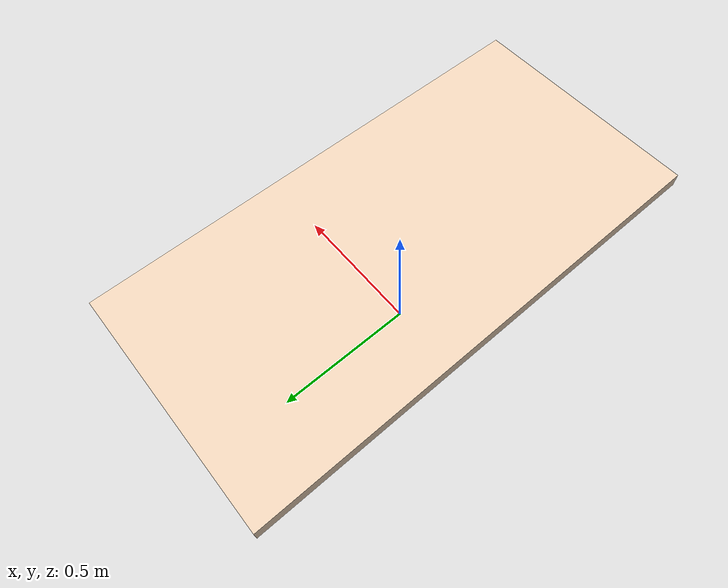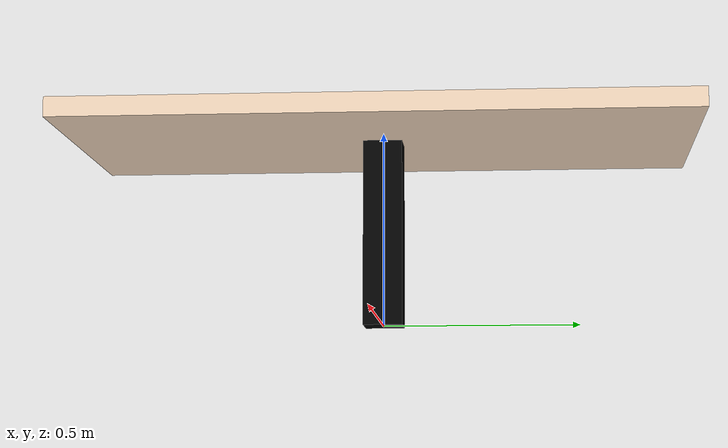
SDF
<?xml version="1.0"?>
<sdf version="1.7">
  <model name="actuated_table">
    <link name="table_top_link">
      <inertial>
        <mass>100000.0</mass>
      </inertial>
      <visual name="table_top_visual">
        <pose>0 0 0.5 0 0 0</pose>
        <geometry>
          <box>
            <size>0.8 1.6 0.05</size>
          </box>
        </geometry>
        <material>
          <diffuse>0.9 0.8 0.7 1.0</diffuse>
        </material>
      </visual>
      <collision name="table_top_collision">
        <pose>0 0 0.5 0 0 0</pose>
        <geometry>
          <box>
            <size>0.8 1.6 0.05</size>
          </box>
        </geometry>
        <drake:proximity_properties>
          <drake:compliant_hydroelastic/>
          <drake:hydroelastic_modulus>1e8</drake:hydroelastic_modulus>
          <drake:mesh_resolution_hint>1.0</drake:mesh_resolution_hint>
          <drake:mu_dynamic>0.3</drake:mu_dynamic>
          <drake:mu_static>0.3</drake:mu_static>
          <drake:hunt_crossley_dissipation>3.0</drake:hunt_crossley_dissipation>
        </drake:proximity_properties>
      </collision>
    </link>

    <link name="table_base_link">
      <inertial>
        <mass>100000.0</mass>
      </inertial>
      <visual name="table_base_visual">
        <pose>0 0 0.25 0 0 0</pose>
        <geometry>
          <box>
            <size>0.1 0.1 0.5</size>
          </box>
        </geometry>
        <material>
          <diffuse>0.0 0.0 0.0 0.0</diffuse>
        </material>
      </visual>
    </link>

    <joint name="table_joint" type="revolute">
      <parent>table_base_link</parent>
      <child>table_top_link</child>
      <pose>0 0 0 0 0 0</pose>
      <axis>
        <xyz>1 0 0</xyz>
      </axis>
    </joint>

  </model>
</sdf>
